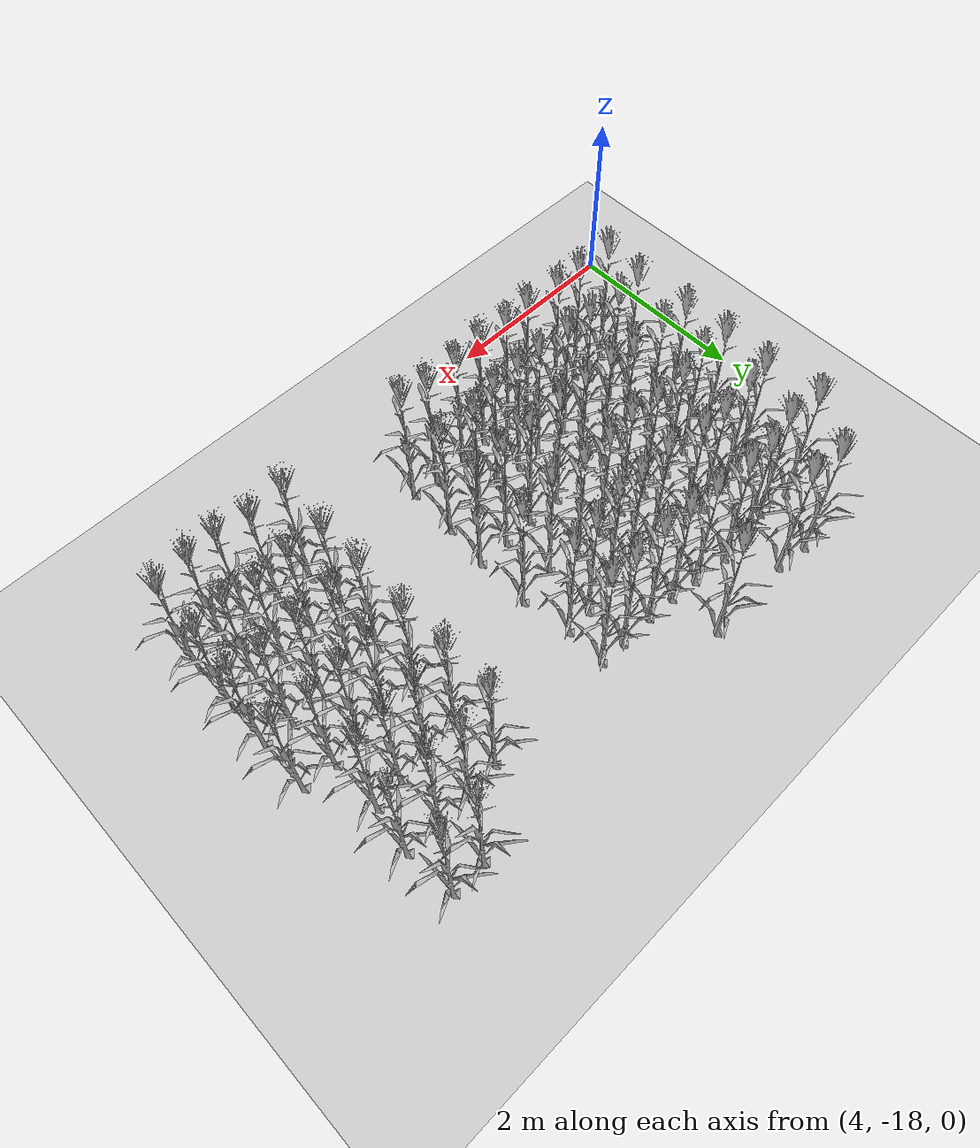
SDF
<sdf version="1.7">
 <world name="farmland_world">
  <model name="ground_plane">
   <static>1</static>
   <link name="link">
    <collision name="collision">
     <geometry><plane><normal>0 0 1</normal><size>40.0 40.0</size></plane></geometry>
     <surface><friction><ode><mu>100</mu><mu2>50</mu2></ode></friction></surface>
    </collision>
    <visual name="visual">
     <cast_shadows>0</cast_shadows>
     <geometry><plane><normal>0 0 1</normal><size>40.0 40.0</size></plane></geometry>
     <material>
      <script><uri>file://media/materials/scripts/gazebo.material</uri><name>Gazebo/Grey</name></script>
     </material>
    </visual>
   </link>
  </model>
  <model name="tree_3_24">
   <static>1</static>
   <link name="link">
    <collision name="collision">
     <geometry><mesh><uri>model://Corn_low_poly/corn.obj</uri><scale>1 1 1</scale></mesh></geometry>
     <surface><friction><ode><mu>100</mu><mu2>50</mu2></ode></friction></surface>
    </collision>
    <visual name="visual">
     <geometry><mesh><uri>model://Corn_low_poly/corn.obj</uri><scale>1 1 1</scale></mesh></geometry>
    </visual>
   </link>
   <pose>4.9691128465164685 -14.404958299555801 0 0 0 0</pose>
  </model>
  <model name="tree_3_25">
   <static>1</static>
   <link name="link">
    <collision name="collision">
     <geometry><mesh><uri>model://Corn_low_poly/corn.obj</uri><scale>1 1 1</scale></mesh></geometry>
     <surface><friction><ode><mu>100</mu><mu2>50</mu2></ode></friction></surface>
    </collision>
    <visual name="visual">
     <geometry><mesh><uri>model://Corn_low_poly/corn.obj</uri><scale>1 1 1</scale></mesh></geometry>
    </visual>
   </link>
   <pose>5.036335965767877 -14.959176423482052 0 0 0 0</pose>
  </model>
  <model name="tree_3_26">
   <static>1</static>
   <link name="link">
    <collision name="collision">
     <geometry><mesh><uri>model://Corn_low_poly/corn.obj</uri><scale>1 1 1</scale></mesh></geometry>
     <surface><friction><ode><mu>100</mu><mu2>50</mu2></ode></friction></surface>
    </collision>
    <visual name="visual">
     <geometry><mesh><uri>model://Corn_low_poly/corn.obj</uri><scale>1 1 1</scale></mesh></geometry>
    </visual>
   </link>
   <pose>5.003852203609662 -15.44707959682529 0 0 0 0</pose>
  </model>
  <model name="tree_3_27">
   <static>1</static>
   <link name="link">
    <collision name="collision">
     <geometry><mesh><uri>model://Corn_low_poly/corn.obj</uri><scale>1 1 1</scale></mesh></geometry>
     <surface><friction><ode><mu>100</mu><mu2>50</mu2></ode></friction></surface>
    </collision>
    <visual name="visual">
     <geometry><mesh><uri>model://Corn_low_poly/corn.obj</uri><scale>1 1 1</scale></mesh></geometry>
    </visual>
   </link>
   <pose>5.0084747532305185 -15.922222324614156 0 0 0 0</pose>
  </model>
  <model name="tree_3_28">
   <static>1</static>
   <link name="link">
    <collision name="collision">
     <geometry><mesh><uri>model://Corn_low_poly/corn.obj</uri><scale>1 1 1</scale></mesh></geometry>
     <surface><friction><ode><mu>100</mu><mu2>50</mu2></ode></friction></surface>
    </collision>
    <visual name="visual">
     <geometry><mesh><uri>model://Corn_low_poly/corn.obj</uri><scale>1 1 1</scale></mesh></geometry>
    </visual>
   </link>
   <pose>5.034902910587718 -16.510284089569996 0 0 0 0</pose>
  </model>
  <model name="tree_3_29">
   <static>1</static>
   <link name="link">
    <collision name="collision">
     <geometry><mesh><uri>model://Corn_low_poly/corn.obj</uri><scale>1 1 1</scale></mesh></geometry>
     <surface><friction><ode><mu>100</mu><mu2>50</mu2></ode></friction></surface>
    </collision>
    <visual name="visual">
     <geometry><mesh><uri>model://Corn_low_poly/corn.obj</uri><scale>1 1 1</scale></mesh></geometry>
    </visual>
   </link>
   <pose>4.967703961460394 -16.95644346931355 0 0 0 0</pose>
  </model>
  <model name="tree_3_53">
   <static>1</static>
   <link name="link">
    <collision name="collision">
     <geometry><mesh><uri>model://Corn_low_poly/corn.obj</uri><scale>1 1 1</scale></mesh></geometry>
     <surface><friction><ode><mu>100</mu><mu2>50</mu2></ode></friction></surface>
    </collision>
    <visual name="visual">
     <geometry><mesh><uri>model://Corn_low_poly/corn.obj</uri><scale>1 1 1</scale></mesh></geometry>
    </visual>
   </link>
   <pose>5.327104109812178 -13.90536058584025 0 0 0 0</pose>
  </model>
  <model name="tree_3_54">
   <static>1</static>
   <link name="link">
    <collision name="collision">
     <geometry><mesh><uri>model://Corn_low_poly/corn.obj</uri><scale>1 1 1</scale></mesh></geometry>
     <surface><friction><ode><mu>100</mu><mu2>50</mu2></ode></friction></surface>
    </collision>
    <visual name="visual">
     <geometry><mesh><uri>model://Corn_low_poly/corn.obj</uri><scale>1 1 1</scale></mesh></geometry>
    </visual>
   </link>
   <pose>5.332407974493906 -14.450691233537952 0 0 0 0</pose>
  </model>
  <model name="tree_3_55">
   <static>1</static>
   <link name="link">
    <collision name="collision">
     <geometry><mesh><uri>model://Corn_low_poly/corn.obj</uri><scale>1 1 1</scale></mesh></geometry>
     <surface><friction><ode><mu>100</mu><mu2>50</mu2></ode></friction></surface>
    </collision>
    <visual name="visual">
     <geometry><mesh><uri>model://Corn_low_poly/corn.obj</uri><scale>1 1 1</scale></mesh></geometry>
    </visual>
   </link>
   <pose>5.285417884828949 -14.935551597897682 0 0 0 0</pose>
  </model>
  <model name="tree_3_56">
   <static>1</static>
   <link name="link">
    <collision name="collision">
     <geometry><mesh><uri>model://Corn_low_poly/corn.obj</uri><scale>1 1 1</scale></mesh></geometry>
     <surface><friction><ode><mu>100</mu><mu2>50</mu2></ode></friction></surface>
    </collision>
    <visual name="visual">
     <geometry><mesh><uri>model://Corn_low_poly/corn.obj</uri><scale>1 1 1</scale></mesh></geometry>
    </visual>
   </link>
   <pose>5.2959812016589 -15.481905173752924 0 0 0 0</pose>
  </model>
  <model name="tree_3_57">
   <static>1</static>
   <link name="link">
    <collision name="collision">
     <geometry><mesh><uri>model://Corn_low_poly/corn.obj</uri><scale>1 1 1</scale></mesh></geometry>
     <surface><friction><ode><mu>100</mu><mu2>50</mu2></ode></friction></surface>
    </collision>
    <visual name="visual">
     <geometry><mesh><uri>model://Corn_low_poly/corn.obj</uri><scale>1 1 1</scale></mesh></geometry>
    </visual>
   </link>
   <pose>5.306616408271684 -15.957303448167988 0 0 0 0</pose>
  </model>
  <model name="tree_3_58">
   <static>1</static>
   <link name="link">
    <collision name="collision">
     <geometry><mesh><uri>model://Corn_low_poly/corn.obj</uri><scale>1 1 1</scale></mesh></geometry>
     <surface><friction><ode><mu>100</mu><mu2>50</mu2></ode></friction></surface>
    </collision>
    <visual name="visual">
     <geometry><mesh><uri>model://Corn_low_poly/corn.obj</uri><scale>1 1 1</scale></mesh></geometry>
    </visual>
   </link>
   <pose>5.345776714424027 -16.47334086077293 0 0 0 0</pose>
  </model>
  <model name="tree_3_59">
   <static>1</static>
   <link name="link">
    <collision name="collision">
     <geometry><mesh><uri>model://Corn_low_poly/corn.obj</uri><scale>1 1 1</scale></mesh></geometry>
     <surface><friction><ode><mu>100</mu><mu2>50</mu2></ode></friction></surface>
    </collision>
    <visual name="visual">
     <geometry><mesh><uri>model://Corn_low_poly/corn.obj</uri><scale>1 1 1</scale></mesh></geometry>
    </visual>
   </link>
   <pose>5.372129939060841 -16.963774590184762 0 0 0 0</pose>
  </model>
  <model name="tree_3_83">
   <static>1</static>
   <link name="link">
    <collision name="collision">
     <geometry><mesh><uri>model://Corn_low_poly/corn.obj</uri><scale>1 1 1</scale></mesh></geometry>
     <surface><friction><ode><mu>100</mu><mu2>50</mu2></ode></friction></surface>
    </collision>
    <visual name="visual">
     <geometry><mesh><uri>model://Corn_low_poly/corn.obj</uri><scale>1 1 1</scale></mesh></geometry>
    </visual>
   </link>
   <pose>5.682411949040824 -13.940025209154646 0 0 0 0</pose>
  </model>
  <model name="tree_3_84">
   <static>1</static>
   <link name="link">
    <collision name="collision">
     <geometry><mesh><uri>model://Corn_low_poly/corn.obj</uri><scale>1 1 1</scale></mesh></geometry>
     <surface><friction><ode><mu>100</mu><mu2>50</mu2></ode></friction></surface>
    </collision>
    <visual name="visual">
     <geometry><mesh><uri>model://Corn_low_poly/corn.obj</uri><scale>1 1 1</scale></mesh></geometry>
    </visual>
   </link>
   <pose>5.697511888033677 -14.364602872167247 0 0 0 0</pose>
  </model>
  <model name="tree_3_85">
   <static>1</static>
   <link name="link">
    <collision name="collision">
     <geometry><mesh><uri>model://Corn_low_poly/corn.obj</uri><scale>1 1 1</scale></mesh></geometry>
     <surface><friction><ode><mu>100</mu><mu2>50</mu2></ode></friction></surface>
    </collision>
    <visual name="visual">
     <geometry><mesh><uri>model://Corn_low_poly/corn.obj</uri><scale>1 1 1</scale></mesh></geometry>
    </visual>
   </link>
   <pose>5.698095668821044 -14.888345501722807 0 0 0 0</pose>
  </model>
  <model name="tree_3_86">
   <static>1</static>
   <link name="link">
    <collision name="collision">
     <geometry><mesh><uri>model://Corn_low_poly/corn.obj</uri><scale>1 1 1</scale></mesh></geometry>
     <surface><friction><ode><mu>100</mu><mu2>50</mu2></ode></friction></surface>
    </collision>
    <visual name="visual">
     <geometry><mesh><uri>model://Corn_low_poly/corn.obj</uri><scale>1 1 1</scale></mesh></geometry>
    </visual>
   </link>
   <pose>5.636128729153455 -15.41623205465619 0 0 0 0</pose>
  </model>
  <model name="tree_3_87">
   <static>1</static>
   <link name="link">
    <collision name="collision">
     <geometry><mesh><uri>model://Corn_low_poly/corn.obj</uri><scale>1 1 1</scale></mesh></geometry>
     <surface><friction><ode><mu>100</mu><mu2>50</mu2></ode></friction></surface>
    </collision>
    <visual name="visual">
     <geometry><mesh><uri>model://Corn_low_poly/corn.obj</uri><scale>1 1 1</scale></mesh></geometry>
    </visual>
   </link>
   <pose>5.717825597207228 -15.94812629021351 0 0 0 0</pose>
  </model>
  <model name="tree_3_88">
   <static>1</static>
   <link name="link">
    <collision name="collision">
     <geometry><mesh><uri>model://Corn_low_poly/corn.obj</uri><scale>1 1 1</scale></mesh></geometry>
     <surface><friction><ode><mu>100</mu><mu2>50</mu2></ode></friction></surface>
    </collision>
    <visual name="visual">
     <geometry><mesh><uri>model://Corn_low_poly/corn.obj</uri><scale>1 1 1</scale></mesh></geometry>
    </visual>
   </link>
   <pose>5.71281425216868 -16.499481596021003 0 0 0 0</pose>
  </model>
  <model name="tree_3_89">
   <static>1</static>
   <link name="link">
    <collision name="collision">
     <geometry><mesh><uri>model://Corn_low_poly/corn.obj</uri><scale>1 1 1</scale></mesh></geometry>
     <surface><friction><ode><mu>100</mu><mu2>50</mu2></ode></friction></surface>
    </collision>
    <visual name="visual">
     <geometry><mesh><uri>model://Corn_low_poly/corn.obj</uri><scale>1 1 1</scale></mesh></geometry>
    </visual>
   </link>
   <pose>5.673048466638673 -16.96501611733449 0 0 0 0</pose>
  </model>
  <model name="tree_3_114">
   <static>1</static>
   <link name="link">
    <collision name="collision">
     <geometry><mesh><uri>model://Corn_low_poly/corn.obj</uri><scale>1 1 1</scale></mesh></geometry>
     <surface><friction><ode><mu>100</mu><mu2>50</mu2></ode></friction></surface>
    </collision>
    <visual name="visual">
     <geometry><mesh><uri>model://Corn_low_poly/corn.obj</uri><scale>1 1 1</scale></mesh></geometry>
    </visual>
   </link>
   <pose>5.982158962108579 -14.37315207810982 0 0 0 0</pose>
  </model>
  <model name="tree_3_115">
   <static>1</static>
   <link name="link">
    <collision name="collision">
     <geometry><mesh><uri>model://Corn_low_poly/corn.obj</uri><scale>1 1 1</scale></mesh></geometry>
     <surface><friction><ode><mu>100</mu><mu2>50</mu2></ode></friction></surface>
    </collision>
    <visual name="visual">
     <geometry><mesh><uri>model://Corn_low_poly/corn.obj</uri><scale>1 1 1</scale></mesh></geometry>
    </visual>
   </link>
   <pose>5.963486762651031 -14.90272953745396 0 0 0 0</pose>
  </model>
  <model name="tree_3_116">
   <static>1</static>
   <link name="link">
    <collision name="collision">
     <geometry><mesh><uri>model://Corn_low_poly/corn.obj</uri><scale>1 1 1</scale></mesh></geometry>
     <surface><friction><ode><mu>100</mu><mu2>50</mu2></ode></friction></surface>
    </collision>
    <visual name="visual">
     <geometry><mesh><uri>model://Corn_low_poly/corn.obj</uri><scale>1 1 1</scale></mesh></geometry>
    </visual>
   </link>
   <pose>5.984407077895976 -15.418621427148333 0 0 0 0</pose>
  </model>
  <model name="tree_3_117">
   <static>1</static>
   <link name="link">
    <collision name="collision">
     <geometry><mesh><uri>model://Corn_low_poly/corn.obj</uri><scale>1 1 1</scale></mesh></geometry>
     <surface><friction><ode><mu>100</mu><mu2>50</mu2></ode></friction></surface>
    </collision>
    <visual name="visual">
     <geometry><mesh><uri>model://Corn_low_poly/corn.obj</uri><scale>1 1 1</scale></mesh></geometry>
    </visual>
   </link>
   <pose>5.980796255889015 -15.990639058738733 0 0 0 0</pose>
  </model>
  <model name="tree_3_118">
   <static>1</static>
   <link name="link">
    <collision name="collision">
     <geometry><mesh><uri>model://Corn_low_poly/corn.obj</uri><scale>1 1 1</scale></mesh></geometry>
     <surface><friction><ode><mu>100</mu><mu2>50</mu2></ode></friction></surface>
    </collision>
    <visual name="visual">
     <geometry><mesh><uri>model://Corn_low_poly/corn.obj</uri><scale>1 1 1</scale></mesh></geometry>
    </visual>
   </link>
   <pose>6.007233488855727 -16.516105369929843 0 0 0 0</pose>
  </model>
  <model name="tree_3_119">
   <static>1</static>
   <link name="link">
    <collision name="collision">
     <geometry><mesh><uri>model://Corn_low_poly/corn.obj</uri><scale>1 1 1</scale></mesh></geometry>
     <surface><friction><ode><mu>100</mu><mu2>50</mu2></ode></friction></surface>
    </collision>
    <visual name="visual">
     <geometry><mesh><uri>model://Corn_low_poly/corn.obj</uri><scale>1 1 1</scale></mesh></geometry>
    </visual>
   </link>
   <pose>6.04992357134055 -17.012544559641597 0 0 0 0</pose>
  </model>
  <model name="tree_3_144">
   <static>1</static>
   <link name="link">
    <collision name="collision">
     <geometry><mesh><uri>model://Corn_low_poly/corn.obj</uri><scale>1 1 1</scale></mesh></geometry>
     <surface><friction><ode><mu>100</mu><mu2>50</mu2></ode></friction></surface>
    </collision>
    <visual name="visual">
     <geometry><mesh><uri>model://Corn_low_poly/corn.obj</uri><scale>1 1 1</scale></mesh></geometry>
    </visual>
   </link>
   <pose>6.375416849487541 -14.409333260738185 0 0 0 0</pose>
  </model>
  <model name="tree_3_145">
   <static>1</static>
   <link name="link">
    <collision name="collision">
     <geometry><mesh><uri>model://Corn_low_poly/corn.obj</uri><scale>1 1 1</scale></mesh></geometry>
     <surface><friction><ode><mu>100</mu><mu2>50</mu2></ode></friction></surface>
    </collision>
    <visual name="visual">
     <geometry><mesh><uri>model://Corn_low_poly/corn.obj</uri><scale>1 1 1</scale></mesh></geometry>
    </visual>
   </link>
   <pose>6.355390171262831 -14.973758158996759 0 0 0 0</pose>
  </model>
  <model name="tree_3_146">
   <static>1</static>
   <link name="link">
    <collision name="collision">
     <geometry><mesh><uri>model://Corn_low_poly/corn.obj</uri><scale>1 1 1</scale></mesh></geometry>
     <surface><friction><ode><mu>100</mu><mu2>50</mu2></ode></friction></surface>
    </collision>
    <visual name="visual">
     <geometry><mesh><uri>model://Corn_low_poly/corn.obj</uri><scale>1 1 1</scale></mesh></geometry>
    </visual>
   </link>
   <pose>6.303262872948389 -15.443238537587725 0 0 0 0</pose>
  </model>
  <model name="tree_3_147">
   <static>1</static>
   <link name="link">
    <collision name="collision">
     <geometry><mesh><uri>model://Corn_low_poly/corn.obj</uri><scale>1 1 1</scale></mesh></geometry>
     <surface><friction><ode><mu>100</mu><mu2>50</mu2></ode></friction></surface>
    </collision>
    <visual name="visual">
     <geometry><mesh><uri>model://Corn_low_poly/corn.obj</uri><scale>1 1 1</scale></mesh></geometry>
    </visual>
   </link>
   <pose>6.31893971640069 -15.986032980800505 0 0 0 0</pose>
  </model>
  <model name="tree_3_148">
   <static>1</static>
   <link name="link">
    <collision name="collision">
     <geometry><mesh><uri>model://Corn_low_poly/corn.obj</uri><scale>1 1 1</scale></mesh></geometry>
     <surface><friction><ode><mu>100</mu><mu2>50</mu2></ode></friction></surface>
    </collision>
    <visual name="visual">
     <geometry><mesh><uri>model://Corn_low_poly/corn.obj</uri><scale>1 1 1</scale></mesh></geometry>
    </visual>
   </link>
   <pose>6.372037136620963 -16.52892733784202 0 0 0 0</pose>
  </model>
  <model name="tree_3_149">
   <static>1</static>
   <link name="link">
    <collision name="collision">
     <geometry><mesh><uri>model://Corn_low_poly/corn.obj</uri><scale>1 1 1</scale></mesh></geometry>
     <surface><friction><ode><mu>100</mu><mu2>50</mu2></ode></friction></surface>
    </collision>
    <visual name="visual">
     <geometry><mesh><uri>model://Corn_low_poly/corn.obj</uri><scale>1 1 1</scale></mesh></geometry>
    </visual>
   </link>
   <pose>6.349004851207632 -16.991063086085266 0 0 0 0</pose>
  </model>
  <model name="tree_3_173">
   <static>1</static>
   <link name="link">
    <collision name="collision">
     <geometry><mesh><uri>model://Corn_low_poly/corn.obj</uri><scale>1 1 1</scale></mesh></geometry>
     <surface><friction><ode><mu>100</mu><mu2>50</mu2></ode></friction></surface>
    </collision>
    <visual name="visual">
     <geometry><mesh><uri>model://Corn_low_poly/corn.obj</uri><scale>1 1 1</scale></mesh></geometry>
    </visual>
   </link>
   <pose>6.641204271884762 -13.915782685941393 0 0 0 0</pose>
  </model>
  <model name="tree_3_174">
   <static>1</static>
   <link name="link">
    <collision name="collision">
     <geometry><mesh><uri>model://Corn_low_poly/corn.obj</uri><scale>1 1 1</scale></mesh></geometry>
     <surface><friction><ode><mu>100</mu><mu2>50</mu2></ode></friction></surface>
    </collision>
    <visual name="visual">
     <geometry><mesh><uri>model://Corn_low_poly/corn.obj</uri><scale>1 1 1</scale></mesh></geometry>
    </visual>
   </link>
   <pose>6.677953399344925 -14.444260520154362 0 0 0 0</pose>
  </model>
  <model name="tree_3_175">
   <static>1</static>
   <link name="link">
    <collision name="collision">
     <geometry><mesh><uri>model://Corn_low_poly/corn.obj</uri><scale>1 1 1</scale></mesh></geometry>
     <surface><friction><ode><mu>100</mu><mu2>50</mu2></ode></friction></surface>
    </collision>
    <visual name="visual">
     <geometry><mesh><uri>model://Corn_low_poly/corn.obj</uri><scale>1 1 1</scale></mesh></geometry>
    </visual>
   </link>
   <pose>6.7028841902140694 -14.963874552031362 0 0 0 0</pose>
  </model>
  <model name="tree_3_176">
   <static>1</static>
   <link name="link">
    <collision name="collision">
     <geometry><mesh><uri>model://Corn_low_poly/corn.obj</uri><scale>1 1 1</scale></mesh></geometry>
     <surface><friction><ode><mu>100</mu><mu2>50</mu2></ode></friction></surface>
    </collision>
    <visual name="visual">
     <geometry><mesh><uri>model://Corn_low_poly/corn.obj</uri><scale>1 1 1</scale></mesh></geometry>
    </visual>
   </link>
   <pose>6.62587803583056 -15.410508612434134 0 0 0 0</pose>
  </model>
  <model name="tree_3_177">
   <static>1</static>
   <link name="link">
    <collision name="collision">
     <geometry><mesh><uri>model://Corn_low_poly/corn.obj</uri><scale>1 1 1</scale></mesh></geometry>
     <surface><friction><ode><mu>100</mu><mu2>50</mu2></ode></friction></surface>
    </collision>
    <visual name="visual">
     <geometry><mesh><uri>model://Corn_low_poly/corn.obj</uri><scale>1 1 1</scale></mesh></geometry>
    </visual>
   </link>
   <pose>6.653241376858481 -15.98409646690276 0 0 0 0</pose>
  </model>
  <model name="tree_3_178">
   <static>1</static>
   <link name="link">
    <collision name="collision">
     <geometry><mesh><uri>model://Corn_low_poly/corn.obj</uri><scale>1 1 1</scale></mesh></geometry>
     <surface><friction><ode><mu>100</mu><mu2>50</mu2></ode></friction></surface>
    </collision>
    <visual name="visual">
     <geometry><mesh><uri>model://Corn_low_poly/corn.obj</uri><scale>1 1 1</scale></mesh></geometry>
    </visual>
   </link>
   <pose>6.646941931345446 -16.531628924381554 0 0 0 0</pose>
  </model>
  <model name="tree_3_179">
   <static>1</static>
   <link name="link">
    <collision name="collision">
     <geometry><mesh><uri>model://Corn_low_poly/corn.obj</uri><scale>1 1 1</scale></mesh></geometry>
     <surface><friction><ode><mu>100</mu><mu2>50</mu2></ode></friction></surface>
    </collision>
    <visual name="visual">
     <geometry><mesh><uri>model://Corn_low_poly/corn.obj</uri><scale>1 1 1</scale></mesh></geometry>
    </visual>
   </link>
   <pose>6.673752273818407 -17.020511685907895 0 0 0 0</pose>
  </model>
  <model name="tree_3_204">
   <static>1</static>
   <link name="link">
    <collision name="collision">
     <geometry><mesh><uri>model://Corn_low_poly/corn.obj</uri><scale>1 1 1</scale></mesh></geometry>
     <surface><friction><ode><mu>100</mu><mu2>50</mu2></ode></friction></surface>
    </collision>
    <visual name="visual">
     <geometry><mesh><uri>model://Corn_low_poly/corn.obj</uri><scale>1 1 1</scale></mesh></geometry>
    </visual>
   </link>
   <pose>6.9870694193175655 -14.460729109061594 0 0 0 0</pose>
  </model>
  <model name="tree_3_205">
   <static>1</static>
   <link name="link">
    <collision name="collision">
     <geometry><mesh><uri>model://Corn_low_poly/corn.obj</uri><scale>1 1 1</scale></mesh></geometry>
     <surface><friction><ode><mu>100</mu><mu2>50</mu2></ode></friction></surface>
    </collision>
    <visual name="visual">
     <geometry><mesh><uri>model://Corn_low_poly/corn.obj</uri><scale>1 1 1</scale></mesh></geometry>
    </visual>
   </link>
   <pose>6.967922410237561 -14.979230504763967 0 0 0 0</pose>
  </model>
  <model name="tree_3_206">
   <static>1</static>
   <link name="link">
    <collision name="collision">
     <geometry><mesh><uri>model://Corn_low_poly/corn.obj</uri><scale>1 1 1</scale></mesh></geometry>
     <surface><friction><ode><mu>100</mu><mu2>50</mu2></ode></friction></surface>
    </collision>
    <visual name="visual">
     <geometry><mesh><uri>model://Corn_low_poly/corn.obj</uri><scale>1 1 1</scale></mesh></geometry>
    </visual>
   </link>
   <pose>6.9519773225808725 -15.40602818650732 0 0 0 0</pose>
  </model>
  <model name="tree_3_207">
   <static>1</static>
   <link name="link">
    <collision name="collision">
     <geometry><mesh><uri>model://Corn_low_poly/corn.obj</uri><scale>1 1 1</scale></mesh></geometry>
     <surface><friction><ode><mu>100</mu><mu2>50</mu2></ode></friction></surface>
    </collision>
    <visual name="visual">
     <geometry><mesh><uri>model://Corn_low_poly/corn.obj</uri><scale>1 1 1</scale></mesh></geometry>
    </visual>
   </link>
   <pose>7.0268867319137875 -15.99188086469541 0 0 0 0</pose>
  </model>
  <model name="tree_3_208">
   <static>1</static>
   <link name="link">
    <collision name="collision">
     <geometry><mesh><uri>model://Corn_low_poly/corn.obj</uri><scale>1 1 1</scale></mesh></geometry>
     <surface><friction><ode><mu>100</mu><mu2>50</mu2></ode></friction></surface>
    </collision>
    <visual name="visual">
     <geometry><mesh><uri>model://Corn_low_poly/corn.obj</uri><scale>1 1 1</scale></mesh></geometry>
    </visual>
   </link>
   <pose>6.95343588654524 -16.526680866756458 0 0 0 0</pose>
  </model>
  <model name="tree_3_209">
   <static>1</static>
   <link name="link">
    <collision name="collision">
     <geometry><mesh><uri>model://Corn_low_poly/corn.obj</uri><scale>1 1 1</scale></mesh></geometry>
     <surface><friction><ode><mu>100</mu><mu2>50</mu2></ode></friction></surface>
    </collision>
    <visual name="visual">
     <geometry><mesh><uri>model://Corn_low_poly/corn.obj</uri><scale>1 1 1</scale></mesh></geometry>
    </visual>
   </link>
   <pose>7.010647771459939 -16.977096921867076 0 0 0 0</pose>
  </model>
  <model name="tree_3_234">
   <static>1</static>
   <link name="link">
    <collision name="collision">
     <geometry><mesh><uri>model://Corn_low_poly/corn.obj</uri><scale>1 1 1</scale></mesh></geometry>
     <surface><friction><ode><mu>100</mu><mu2>50</mu2></ode></friction></surface>
    </collision>
    <visual name="visual">
     <geometry><mesh><uri>model://Corn_low_poly/corn.obj</uri><scale>1 1 1</scale></mesh></geometry>
    </visual>
   </link>
   <pose>7.352518757830026 -14.45033243044469 0 0 0 0</pose>
  </model>
  <model name="tree_3_235">
   <static>1</static>
   <link name="link">
    <collision name="collision">
     <geometry><mesh><uri>model://Corn_low_poly/corn.obj</uri><scale>1 1 1</scale></mesh></geometry>
     <surface><friction><ode><mu>100</mu><mu2>50</mu2></ode></friction></surface>
    </collision>
    <visual name="visual">
     <geometry><mesh><uri>model://Corn_low_poly/corn.obj</uri><scale>1 1 1</scale></mesh></geometry>
    </visual>
   </link>
   <pose>7.341901096152535 -14.903274964873019 0 0 0 0</pose>
  </model>
  <model name="tree_3_236">
   <static>1</static>
   <link name="link">
    <collision name="collision">
     <geometry><mesh><uri>model://Corn_low_poly/corn.obj</uri><scale>1 1 1</scale></mesh></geometry>
     <surface><friction><ode><mu>100</mu><mu2>50</mu2></ode></friction></surface>
    </collision>
    <visual name="visual">
     <geometry><mesh><uri>model://Corn_low_poly/corn.obj</uri><scale>1 1 1</scale></mesh></geometry>
    </visual>
   </link>
   <pose>7.284168517820813 -15.471268808484513 0 0 0 0</pose>
  </model>
  <model name="tree_3_237">
   <static>1</static>
   <link name="link">
    <collision name="collision">
     <geometry><mesh><uri>model://Corn_low_poly/corn.obj</uri><scale>1 1 1</scale></mesh></geometry>
     <surface><friction><ode><mu>100</mu><mu2>50</mu2></ode></friction></surface>
    </collision>
    <visual name="visual">
     <geometry><mesh><uri>model://Corn_low_poly/corn.obj</uri><scale>1 1 1</scale></mesh></geometry>
    </visual>
   </link>
   <pose>7.365593001398747 -15.97791482220621 0 0 0 0</pose>
  </model>
  <model name="tree_3_238">
   <static>1</static>
   <link name="link">
    <collision name="collision">
     <geometry><mesh><uri>model://Corn_low_poly/corn.obj</uri><scale>1 1 1</scale></mesh></geometry>
     <surface><friction><ode><mu>100</mu><mu2>50</mu2></ode></friction></surface>
    </collision>
    <visual name="visual">
     <geometry><mesh><uri>model://Corn_low_poly/corn.obj</uri><scale>1 1 1</scale></mesh></geometry>
    </visual>
   </link>
   <pose>7.2836084240510255 -16.442158792021143 0 0 0 0</pose>
  </model>
  <model name="tree_3_239">
   <static>1</static>
   <link name="link">
    <collision name="collision">
     <geometry><mesh><uri>model://Corn_low_poly/corn.obj</uri><scale>1 1 1</scale></mesh></geometry>
     <surface><friction><ode><mu>100</mu><mu2>50</mu2></ode></friction></surface>
    </collision>
    <visual name="visual">
     <geometry><mesh><uri>model://Corn_low_poly/corn.obj</uri><scale>1 1 1</scale></mesh></geometry>
    </visual>
   </link>
   <pose>7.366469773496547 -16.97972117522263 0 0 0 0</pose>
  </model>
  <model name="tree_3_264">
   <static>1</static>
   <link name="link">
    <collision name="collision">
     <geometry><mesh><uri>model://Corn_low_poly/corn.obj</uri><scale>1 1 1</scale></mesh></geometry>
     <surface><friction><ode><mu>100</mu><mu2>50</mu2></ode></friction></surface>
    </collision>
    <visual name="visual">
     <geometry><mesh><uri>model://Corn_low_poly/corn.obj</uri><scale>1 1 1</scale></mesh></geometry>
    </visual>
   </link>
   <pose>7.63392242590954 -14.460842756885732 0 0 0 0</pose>
  </model>
  <model name="tree_3_265">
   <static>1</static>
   <link name="link">
    <collision name="collision">
     <geometry><mesh><uri>model://Corn_low_poly/corn.obj</uri><scale>1 1 1</scale></mesh></geometry>
     <surface><friction><ode><mu>100</mu><mu2>50</mu2></ode></friction></surface>
    </collision>
    <visual name="visual">
     <geometry><mesh><uri>model://Corn_low_poly/corn.obj</uri><scale>1 1 1</scale></mesh></geometry>
    </visual>
   </link>
   <pose>7.6249524522749175 -14.884436436404796 0 0 0 0</pose>
  </model>
  <model name="tree_3_266">
   <static>1</static>
   <link name="link">
    <collision name="collision">
     <geometry><mesh><uri>model://Corn_low_poly/corn.obj</uri><scale>1 1 1</scale></mesh></geometry>
     <surface><friction><ode><mu>100</mu><mu2>50</mu2></ode></friction></surface>
    </collision>
    <visual name="visual">
     <geometry><mesh><uri>model://Corn_low_poly/corn.obj</uri><scale>1 1 1</scale></mesh></geometry>
    </visual>
   </link>
   <pose>7.7061625444857915 -15.402754439006909 0 0 0 0</pose>
  </model>
  <model name="tree_3_267">
   <static>1</static>
   <link name="link">
    <collision name="collision">
     <geometry><mesh><uri>model://Corn_low_poly/corn.obj</uri><scale>1 1 1</scale></mesh></geometry>
     <surface><friction><ode><mu>100</mu><mu2>50</mu2></ode></friction></surface>
    </collision>
    <visual name="visual">
     <geometry><mesh><uri>model://Corn_low_poly/corn.obj</uri><scale>1 1 1</scale></mesh></geometry>
    </visual>
   </link>
   <pose>7.706781850942176 -15.989011761543363 0 0 0 0</pose>
  </model>
  <model name="tree_3_268">
   <static>1</static>
   <link name="link">
    <collision name="collision">
     <geometry><mesh><uri>model://Corn_low_poly/corn.obj</uri><scale>1 1 1</scale></mesh></geometry>
     <surface><friction><ode><mu>100</mu><mu2>50</mu2></ode></friction></surface>
    </collision>
    <visual name="visual">
     <geometry><mesh><uri>model://Corn_low_poly/corn.obj</uri><scale>1 1 1</scale></mesh></geometry>
    </visual>
   </link>
   <pose>7.658398052149876 -16.46902273605167 0 0 0 0</pose>
  </model>
  <model name="tree_3_269">
   <static>1</static>
   <link name="link">
    <collision name="collision">
     <geometry><mesh><uri>model://Corn_low_poly/corn.obj</uri><scale>1 1 1</scale></mesh></geometry>
     <surface><friction><ode><mu>100</mu><mu2>50</mu2></ode></friction></surface>
    </collision>
    <visual name="visual">
     <geometry><mesh><uri>model://Corn_low_poly/corn.obj</uri><scale>1 1 1</scale></mesh></geometry>
    </visual>
   </link>
   <pose>7.638786154218671 -17.02807203918695 0 0 0 0</pose>
  </model>
  <model name="tree_3_294">
   <static>1</static>
   <link name="link">
    <collision name="collision">
     <geometry><mesh><uri>model://Corn_low_poly/corn.obj</uri><scale>1 1 1</scale></mesh></geometry>
     <surface><friction><ode><mu>100</mu><mu2>50</mu2></ode></friction></surface>
    </collision>
    <visual name="visual">
     <geometry><mesh><uri>model://Corn_low_poly/corn.obj</uri><scale>1 1 1</scale></mesh></geometry>
    </visual>
   </link>
   <pose>8.99913697480249 -14.457125649228887 0 0 0 0</pose>
  </model>
  <model name="tree_3_295">
   <static>1</static>
   <link name="link">
    <collision name="collision">
     <geometry><mesh><uri>model://Corn_low_poly/corn.obj</uri><scale>1 1 1</scale></mesh></geometry>
     <surface><friction><ode><mu>100</mu><mu2>50</mu2></ode></friction></surface>
    </collision>
    <visual name="visual">
     <geometry><mesh><uri>model://Corn_low_poly/corn.obj</uri><scale>1 1 1</scale></mesh></geometry>
    </visual>
   </link>
   <pose>9.004098270325116 -14.958764878959904 0 0 0 0</pose>
  </model>
  <model name="tree_3_296">
   <static>1</static>
   <link name="link">
    <collision name="collision">
     <geometry><mesh><uri>model://Corn_low_poly/corn.obj</uri><scale>1 1 1</scale></mesh></geometry>
     <surface><friction><ode><mu>100</mu><mu2>50</mu2></ode></friction></surface>
    </collision>
    <visual name="visual">
     <geometry><mesh><uri>model://Corn_low_poly/corn.obj</uri><scale>1 1 1</scale></mesh></geometry>
    </visual>
   </link>
   <pose>9.019325137531967 -15.442095963459012 0 0 0 0</pose>
  </model>
  <model name="tree_3_297">
   <static>1</static>
   <link name="link">
    <collision name="collision">
     <geometry><mesh><uri>model://Corn_low_poly/corn.obj</uri><scale>1 1 1</scale></mesh></geometry>
     <surface><friction><ode><mu>100</mu><mu2>50</mu2></ode></friction></surface>
    </collision>
    <visual name="visual">
     <geometry><mesh><uri>model://Corn_low_poly/corn.obj</uri><scale>1 1 1</scale></mesh></geometry>
    </visual>
   </link>
   <pose>8.999331138403651 -16.005894348823425 0 0 0 0</pose>
  </model>
  <model name="tree_3_298">
   <static>1</static>
   <link name="link">
    <collision name="collision">
     <geometry><mesh><uri>model://Corn_low_poly/corn.obj</uri><scale>1 1 1</scale></mesh></geometry>
     <surface><friction><ode><mu>100</mu><mu2>50</mu2></ode></friction></surface>
    </collision>
    <visual name="visual">
     <geometry><mesh><uri>model://Corn_low_poly/corn.obj</uri><scale>1 1 1</scale></mesh></geometry>
    </visual>
   </link>
   <pose>8.997737424260754 -16.47140893393512 0 0 0 0</pose>
  </model>
  <model name="tree_3_299">
   <static>1</static>
   <link name="link">
    <collision name="collision">
     <geometry><mesh><uri>model://Corn_low_poly/corn.obj</uri><scale>1 1 1</scale></mesh></geometry>
     <surface><friction><ode><mu>100</mu><mu2>50</mu2></ode></friction></surface>
    </collision>
    <visual name="visual">
     <geometry><mesh><uri>model://Corn_low_poly/corn.obj</uri><scale>1 1 1</scale></mesh></geometry>
    </visual>
   </link>
   <pose>8.982510692187292 -17.01090003450357 0 0 0 0</pose>
  </model>
  <model name="tree_3_324">
   <static>1</static>
   <link name="link">
    <collision name="collision">
     <geometry><mesh><uri>model://Corn_low_poly/corn.obj</uri><scale>1 1 1</scale></mesh></geometry>
     <surface><friction><ode><mu>100</mu><mu2>50</mu2></ode></friction></surface>
    </collision>
    <visual name="visual">
     <geometry><mesh><uri>model://Corn_low_poly/corn.obj</uri><scale>1 1 1</scale></mesh></geometry>
    </visual>
   </link>
   <pose>9.357201233977424 -14.39145801206781 0 0 0 0</pose>
  </model>
  <model name="tree_3_325">
   <static>1</static>
   <link name="link">
    <collision name="collision">
     <geometry><mesh><uri>model://Corn_low_poly/corn.obj</uri><scale>1 1 1</scale></mesh></geometry>
     <surface><friction><ode><mu>100</mu><mu2>50</mu2></ode></friction></surface>
    </collision>
    <visual name="visual">
     <geometry><mesh><uri>model://Corn_low_poly/corn.obj</uri><scale>1 1 1</scale></mesh></geometry>
    </visual>
   </link>
   <pose>9.353635705019668 -14.93819735801758 0 0 0 0</pose>
  </model>
  <model name="tree_3_326">
   <static>1</static>
   <link name="link">
    <collision name="collision">
     <geometry><mesh><uri>model://Corn_low_poly/corn.obj</uri><scale>1 1 1</scale></mesh></geometry>
     <surface><friction><ode><mu>100</mu><mu2>50</mu2></ode></friction></surface>
    </collision>
    <visual name="visual">
     <geometry><mesh><uri>model://Corn_low_poly/corn.obj</uri><scale>1 1 1</scale></mesh></geometry>
    </visual>
   </link>
   <pose>9.358419486166577 -15.495451878936917 0 0 0 0</pose>
  </model>
  <model name="tree_3_327">
   <static>1</static>
   <link name="link">
    <collision name="collision">
     <geometry><mesh><uri>model://Corn_low_poly/corn.obj</uri><scale>1 1 1</scale></mesh></geometry>
     <surface><friction><ode><mu>100</mu><mu2>50</mu2></ode></friction></surface>
    </collision>
    <visual name="visual">
     <geometry><mesh><uri>model://Corn_low_poly/corn.obj</uri><scale>1 1 1</scale></mesh></geometry>
    </visual>
   </link>
   <pose>9.304498812395169 -15.999150183382099 0 0 0 0</pose>
  </model>
  <model name="tree_3_328">
   <static>1</static>
   <link name="link">
    <collision name="collision">
     <geometry><mesh><uri>model://Corn_low_poly/corn.obj</uri><scale>1 1 1</scale></mesh></geometry>
     <surface><friction><ode><mu>100</mu><mu2>50</mu2></ode></friction></surface>
    </collision>
    <visual name="visual">
     <geometry><mesh><uri>model://Corn_low_poly/corn.obj</uri><scale>1 1 1</scale></mesh></geometry>
    </visual>
   </link>
   <pose>9.339919849047206 -16.492230499527547 0 0 0 0</pose>
  </model>
  <model name="tree_3_329">
   <static>1</static>
   <link name="link">
    <collision name="collision">
     <geometry><mesh><uri>model://Corn_low_poly/corn.obj</uri><scale>1 1 1</scale></mesh></geometry>
     <surface><friction><ode><mu>100</mu><mu2>50</mu2></ode></friction></surface>
    </collision>
    <visual name="visual">
     <geometry><mesh><uri>model://Corn_low_poly/corn.obj</uri><scale>1 1 1</scale></mesh></geometry>
    </visual>
   </link>
   <pose>9.35455959514887 -16.98139310308301 0 0 0 0</pose>
  </model>
  <model name="tree_3_353">
   <static>1</static>
   <link name="link">
    <collision name="collision">
     <geometry><mesh><uri>model://Corn_low_poly/corn.obj</uri><scale>1 1 1</scale></mesh></geometry>
     <surface><friction><ode><mu>100</mu><mu2>50</mu2></ode></friction></surface>
    </collision>
    <visual name="visual">
     <geometry><mesh><uri>model://Corn_low_poly/corn.obj</uri><scale>1 1 1</scale></mesh></geometry>
    </visual>
   </link>
   <pose>9.63987157845824 -13.926429324325076 0 0 0 0</pose>
  </model>
  <model name="tree_3_354">
   <static>1</static>
   <link name="link">
    <collision name="collision">
     <geometry><mesh><uri>model://Corn_low_poly/corn.obj</uri><scale>1 1 1</scale></mesh></geometry>
     <surface><friction><ode><mu>100</mu><mu2>50</mu2></ode></friction></surface>
    </collision>
    <visual name="visual">
     <geometry><mesh><uri>model://Corn_low_poly/corn.obj</uri><scale>1 1 1</scale></mesh></geometry>
    </visual>
   </link>
   <pose>9.670291653966348 -14.43403660007443 0 0 0 0</pose>
  </model>
  <model name="tree_3_355">
   <static>1</static>
   <link name="link">
    <collision name="collision">
     <geometry><mesh><uri>model://Corn_low_poly/corn.obj</uri><scale>1 1 1</scale></mesh></geometry>
     <surface><friction><ode><mu>100</mu><mu2>50</mu2></ode></friction></surface>
    </collision>
    <visual name="visual">
     <geometry><mesh><uri>model://Corn_low_poly/corn.obj</uri><scale>1 1 1</scale></mesh></geometry>
    </visual>
   </link>
   <pose>9.674890396899817 -14.926352912605763 0 0 0 0</pose>
  </model>
  <model name="tree_3_356">
   <static>1</static>
   <link name="link">
    <collision name="collision">
     <geometry><mesh><uri>model://Corn_low_poly/corn.obj</uri><scale>1 1 1</scale></mesh></geometry>
     <surface><friction><ode><mu>100</mu><mu2>50</mu2></ode></friction></surface>
    </collision>
    <visual name="visual">
     <geometry><mesh><uri>model://Corn_low_poly/corn.obj</uri><scale>1 1 1</scale></mesh></geometry>
    </visual>
   </link>
   <pose>9.680211189385332 -15.445835893862661 0 0 0 0</pose>
  </model>
  <model name="tree_3_357">
   <static>1</static>
   <link name="link">
    <collision name="collision">
     <geometry><mesh><uri>model://Corn_low_poly/corn.obj</uri><scale>1 1 1</scale></mesh></geometry>
     <surface><friction><ode><mu>100</mu><mu2>50</mu2></ode></friction></surface>
    </collision>
    <visual name="visual">
     <geometry><mesh><uri>model://Corn_low_poly/corn.obj</uri><scale>1 1 1</scale></mesh></geometry>
    </visual>
   </link>
   <pose>9.6572850588851 -15.982424823545148 0 0 0 0</pose>
  </model>
  <model name="tree_3_358">
   <static>1</static>
   <link name="link">
    <collision name="collision">
     <geometry><mesh><uri>model://Corn_low_poly/corn.obj</uri><scale>1 1 1</scale></mesh></geometry>
     <surface><friction><ode><mu>100</mu><mu2>50</mu2></ode></friction></surface>
    </collision>
    <visual name="visual">
     <geometry><mesh><uri>model://Corn_low_poly/corn.obj</uri><scale>1 1 1</scale></mesh></geometry>
    </visual>
   </link>
   <pose>9.701132816756102 -16.45108819818243 0 0 0 0</pose>
  </model>
  <model name="tree_3_359">
   <static>1</static>
   <link name="link">
    <collision name="collision">
     <geometry><mesh><uri>model://Corn_low_poly/corn.obj</uri><scale>1 1 1</scale></mesh></geometry>
     <surface><friction><ode><mu>100</mu><mu2>50</mu2></ode></friction></surface>
    </collision>
    <visual name="visual">
     <geometry><mesh><uri>model://Corn_low_poly/corn.obj</uri><scale>1 1 1</scale></mesh></geometry>
    </visual>
   </link>
   <pose>9.667398183099403 -17.0460572254115 0 0 0 0</pose>
  </model>
  <model name="tree_3_383">
   <static>1</static>
   <link name="link">
    <collision name="collision">
     <geometry><mesh><uri>model://Corn_low_poly/corn.obj</uri><scale>1 1 1</scale></mesh></geometry>
     <surface><friction><ode><mu>100</mu><mu2>50</mu2></ode></friction></surface>
    </collision>
    <visual name="visual">
     <geometry><mesh><uri>model://Corn_low_poly/corn.obj</uri><scale>1 1 1</scale></mesh></geometry>
    </visual>
   </link>
   <pose>9.992222445277356 -13.91828367316583 0 0 0 0</pose>
  </model>
  <model name="tree_3_384">
   <static>1</static>
   <link name="link">
    <collision name="collision">
     <geometry><mesh><uri>model://Corn_low_poly/corn.obj</uri><scale>1 1 1</scale></mesh></geometry>
     <surface><friction><ode><mu>100</mu><mu2>50</mu2></ode></friction></surface>
    </collision>
    <visual name="visual">
     <geometry><mesh><uri>model://Corn_low_poly/corn.obj</uri><scale>1 1 1</scale></mesh></geometry>
    </visual>
   </link>
   <pose>10.048233462695066 -14.423032037648635 0 0 0 0</pose>
  </model>
  <model name="tree_3_385">
   <static>1</static>
   <link name="link">
    <collision name="collision">
     <geometry><mesh><uri>model://Corn_low_poly/corn.obj</uri><scale>1 1 1</scale></mesh></geometry>
     <surface><friction><ode><mu>100</mu><mu2>50</mu2></ode></friction></surface>
    </collision>
    <visual name="visual">
     <geometry><mesh><uri>model://Corn_low_poly/corn.obj</uri><scale>1 1 1</scale></mesh></geometry>
    </visual>
   </link>
   <pose>9.978766256831527 -14.882332914800932 0 0 0 0</pose>
  </model>
  <model name="tree_3_386">
   <static>1</static>
   <link name="link">
    <collision name="collision">
     <geometry><mesh><uri>model://Corn_low_poly/corn.obj</uri><scale>1 1 1</scale></mesh></geometry>
     <surface><friction><ode><mu>100</mu><mu2>50</mu2></ode></friction></surface>
    </collision>
    <visual name="visual">
     <geometry><mesh><uri>model://Corn_low_poly/corn.obj</uri><scale>1 1 1</scale></mesh></geometry>
    </visual>
   </link>
   <pose>9.9886803751368 -15.421426706320132 0 0 0 0</pose>
  </model>
  <model name="tree_3_387">
   <static>1</static>
   <link name="link">
    <collision name="collision">
     <geometry><mesh><uri>model://Corn_low_poly/corn.obj</uri><scale>1 1 1</scale></mesh></geometry>
     <surface><friction><ode><mu>100</mu><mu2>50</mu2></ode></friction></surface>
    </collision>
    <visual name="visual">
     <geometry><mesh><uri>model://Corn_low_poly/corn.obj</uri><scale>1 1 1</scale></mesh></geometry>
    </visual>
   </link>
   <pose>10.01965351697478 -15.969840819463245 0 0 0 0</pose>
  </model>
  <model name="tree_3_388">
   <static>1</static>
   <link name="link">
    <collision name="collision">
     <geometry><mesh><uri>model://Corn_low_poly/corn.obj</uri><scale>1 1 1</scale></mesh></geometry>
     <surface><friction><ode><mu>100</mu><mu2>50</mu2></ode></friction></surface>
    </collision>
    <visual name="visual">
     <geometry><mesh><uri>model://Corn_low_poly/corn.obj</uri><scale>1 1 1</scale></mesh></geometry>
    </visual>
   </link>
   <pose>9.98644021756109 -16.509948806378816 0 0 0 0</pose>
  </model>
  <model name="tree_3_389">
   <static>1</static>
   <link name="link">
    <collision name="collision">
     <geometry><mesh><uri>model://Corn_low_poly/corn.obj</uri><scale>1 1 1</scale></mesh></geometry>
     <surface><friction><ode><mu>100</mu><mu2>50</mu2></ode></friction></surface>
    </collision>
    <visual name="visual">
     <geometry><mesh><uri>model://Corn_low_poly/corn.obj</uri><scale>1 1 1</scale></mesh></geometry>
    </visual>
   </link>
   <pose>9.96342915062142 -17.026121247315338 0 0 0 0</pose>
  </model>
  <model name="tree_3_416">
   <static>1</static>
   <link name="link">
    <collision name="collision">
     <geometry><mesh><uri>model://Corn_low_poly/corn.obj</uri><scale>1 1 1</scale></mesh></geometry>
     <surface><friction><ode><mu>100</mu><mu2>50</mu2></ode></friction></surface>
    </collision>
    <visual name="visual">
     <geometry><mesh><uri>model://Corn_low_poly/corn.obj</uri><scale>1 1 1</scale></mesh></geometry>
    </visual>
   </link>
   <pose>10.317923385100826 -15.461315659258618 0 0 0 0</pose>
  </model>
  <model name="tree_3_417">
   <static>1</static>
   <link name="link">
    <collision name="collision">
     <geometry><mesh><uri>model://Corn_low_poly/corn.obj</uri><scale>1 1 1</scale></mesh></geometry>
     <surface><friction><ode><mu>100</mu><mu2>50</mu2></ode></friction></surface>
    </collision>
    <visual name="visual">
     <geometry><mesh><uri>model://Corn_low_poly/corn.obj</uri><scale>1 1 1</scale></mesh></geometry>
    </visual>
   </link>
   <pose>10.312117896813648 -16.005946768977566 0 0 0 0</pose>
  </model>
  <model name="tree_3_418">
   <static>1</static>
   <link name="link">
    <collision name="collision">
     <geometry><mesh><uri>model://Corn_low_poly/corn.obj</uri><scale>1 1 1</scale></mesh></geometry>
     <surface><friction><ode><mu>100</mu><mu2>50</mu2></ode></friction></surface>
    </collision>
    <visual name="visual">
     <geometry><mesh><uri>model://Corn_low_poly/corn.obj</uri><scale>1 1 1</scale></mesh></geometry>
    </visual>
   </link>
   <pose>10.301591207317927 -16.455269241466215 0 0 0 0</pose>
  </model>
  <model name="tree_3_419">
   <static>1</static>
   <link name="link">
    <collision name="collision">
     <geometry><mesh><uri>model://Corn_low_poly/corn.obj</uri><scale>1 1 1</scale></mesh></geometry>
     <surface><friction><ode><mu>100</mu><mu2>50</mu2></ode></friction></surface>
    </collision>
    <visual name="visual">
     <geometry><mesh><uri>model://Corn_low_poly/corn.obj</uri><scale>1 1 1</scale></mesh></geometry>
    </visual>
   </link>
   <pose>10.297598450103765 -16.970456627646044 0 0 0 0</pose>
  </model>
 </world>
</sdf>
